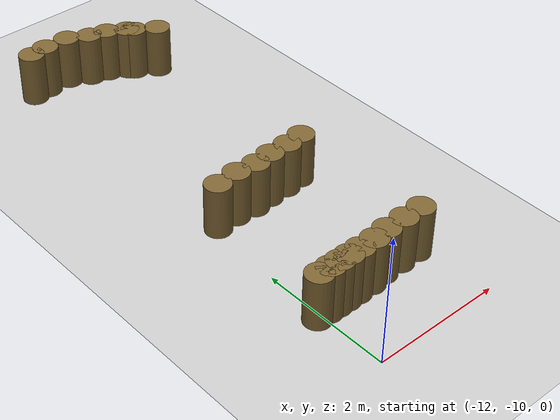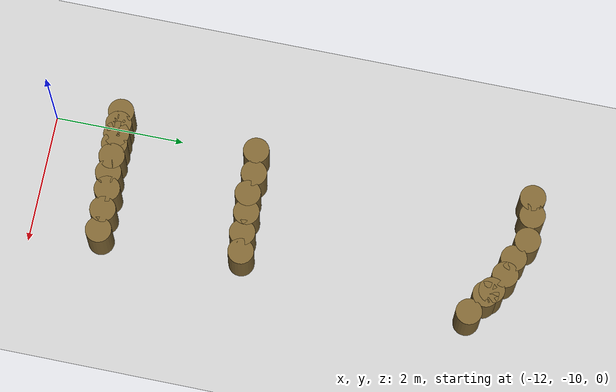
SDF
<sdf version="1.6">
 <world name="default">
  <model name="ground_plane">
   <static>1</static>
   <link name="link">
    <collision name="collision">
     <geometry><plane><normal>0 0 1</normal><size>100 100</size></plane></geometry>
     <surface><friction><ode><mu>100</mu><mu2>50</mu2></ode></friction></surface>
    </collision>
    <visual name="visual">
     <cast_shadows>0</cast_shadows>
     <geometry><plane><normal>0 0 1</normal><size>100 100</size></plane></geometry>
     <material>
      <script><uri>file://media/materials/scripts/gazebo.material</uri><name>Gazebo/Grey</name></script>
     </material>
    </visual>
   </link>
  </model>
  <model name="mini_cylinder_0_clone_0_clone_clone_clone_clone_3_clone_6">
   <link name="link">
    <inertial>
     <mass>1</mass>
     <inertia><ixx>0.145833</ixx><ixy>0</ixy><ixz>0</ixz><iyy>0.145833</iyy><iyz>0</iyz><izz>0.125</izz></inertia>
    </inertial>
    <visual name="visual">
     <geometry><cylinder><radius>0.2</radius><length>0.8</length></cylinder></geometry>
     <material>
      <script><name>Gazebo/Grey</name><uri>file://media/materials/scripts/gazebo.material</uri></script>
      <shader type="vertex"><normal_map>__default__</normal_map></shader>
      <ambient>0.5 0.4 0.2 1</ambient>
      <diffuse>0.7 0.7 0.7 1</diffuse>
      <specular>0.01 0.01 0.01 1</specular>
      <emissive>0 0 0 1</emissive>
     </material>
    </visual>
    <collision name="collision">
     <geometry><cylinder><radius>0.2</radius><length>0.8</length></cylinder></geometry>
     <surface>
      <friction>
       <ode><mu>1</mu><mu2>1</mu2><fdir1>0 0 0</fdir1><slip1>0</slip1><slip2>0</slip2></ode>
       <torsional>
        <coefficient>1</coefficient>
        <patch_radius>0</patch_radius>
        <surface_radius>0</surface_radius>
        <use_patch_radius>1</use_patch_radius>
        <ode><slip>0</slip></ode>
       </torsional>
      </friction>
      <bounce><restitution_coefficient>0</restitution_coefficient><threshold>1e+06</threshold></bounce>
      <contact>
       <collide_without_contact>0</collide_without_contact>
       <collide_without_contact_bitmask>1</collide_without_contact_bitmask>
       <collide_bitmask>1</collide_bitmask>
       <ode>
        <soft_cfm>0</soft_cfm>
        <soft_erp>0.2</soft_erp>
        <kp>1e+13</kp>
        <kd>1</kd>
        <max_vel>0.01</max_vel>
        <min_depth>0</min_depth>
       </ode>
       <bullet>
        <split_impulse>1</split_impulse>
        <split_impulse_penetration_threshold>-0.01</split_impulse_penetration_threshold>
        <soft_cfm>0</soft_cfm>
        <soft_erp>0.2</soft_erp>
        <kp>1e+13</kp>
        <kd>1</kd>
       </bullet>
      </contact>
     </surface>
    </collision>
   </link>
   <static>1</static>
   <pose>-11.9927 -2.54938 0.4 0 -0 0</pose>
  </model>
  <model name="mini_cylinder_0_clone_0_clone_clone_clone_clone_3_clone_7">
   <link name="link">
    <inertial>
     <mass>1</mass>
     <inertia><ixx>0.145833</ixx><ixy>0</ixy><ixz>0</ixz><iyy>0.145833</iyy><iyz>0</iyz><izz>0.125</izz></inertia>
    </inertial>
    <visual name="visual">
     <geometry><cylinder><radius>0.2</radius><length>0.8</length></cylinder></geometry>
     <material>
      <script><name>Gazebo/Grey</name><uri>file://media/materials/scripts/gazebo.material</uri></script>
      <shader type="vertex"><normal_map>__default__</normal_map></shader>
      <ambient>0.5 0.4 0.2 1</ambient>
      <diffuse>0.7 0.7 0.7 1</diffuse>
      <specular>0.01 0.01 0.01 1</specular>
      <emissive>0 0 0 1</emissive>
     </material>
    </visual>
    <collision name="collision">
     <geometry><cylinder><radius>0.2</radius><length>0.8</length></cylinder></geometry>
     <surface>
      <friction>
       <ode><mu>1</mu><mu2>1</mu2><fdir1>0 0 0</fdir1><slip1>0</slip1><slip2>0</slip2></ode>
       <torsional>
        <coefficient>1</coefficient>
        <patch_radius>0</patch_radius>
        <surface_radius>0</surface_radius>
        <use_patch_radius>1</use_patch_radius>
        <ode><slip>0</slip></ode>
       </torsional>
      </friction>
      <bounce><restitution_coefficient>0</restitution_coefficient><threshold>1e+06</threshold></bounce>
      <contact>
       <collide_without_contact>0</collide_without_contact>
       <collide_without_contact_bitmask>1</collide_without_contact_bitmask>
       <collide_bitmask>1</collide_bitmask>
       <ode>
        <soft_cfm>0</soft_cfm>
        <soft_erp>0.2</soft_erp>
        <kp>1e+13</kp>
        <kd>1</kd>
        <max_vel>0.01</max_vel>
        <min_depth>0</min_depth>
       </ode>
       <bullet>
        <split_impulse>1</split_impulse>
        <split_impulse_penetration_threshold>-0.01</split_impulse_penetration_threshold>
        <soft_cfm>0</soft_cfm>
        <soft_erp>0.2</soft_erp>
        <kp>1e+13</kp>
        <kd>1</kd>
       </bullet>
      </contact>
     </surface>
    </collision>
   </link>
   <static>1</static>
   <pose>-11.7175 -2.50936 0.4 0 -0 0</pose>
  </model>
  <model name="mini_cylinder_0_clone_0_clone_clone_clone_clone_3_clone_8">
   <link name="link">
    <inertial>
     <mass>1</mass>
     <inertia><ixx>0.145833</ixx><ixy>0</ixy><ixz>0</ixz><iyy>0.145833</iyy><iyz>0</iyz><izz>0.125</izz></inertia>
    </inertial>
    <visual name="visual">
     <geometry><cylinder><radius>0.2</radius><length>0.8</length></cylinder></geometry>
     <material>
      <script><name>Gazebo/Grey</name><uri>file://media/materials/scripts/gazebo.material</uri></script>
      <shader type="vertex"><normal_map>__default__</normal_map></shader>
      <ambient>0.5 0.4 0.2 1</ambient>
      <diffuse>0.7 0.7 0.7 1</diffuse>
      <specular>0.01 0.01 0.01 1</specular>
      <emissive>0 0 0 1</emissive>
     </material>
    </visual>
    <collision name="collision">
     <geometry><cylinder><radius>0.2</radius><length>0.8</length></cylinder></geometry>
     <surface>
      <friction>
       <ode><mu>1</mu><mu2>1</mu2><fdir1>0 0 0</fdir1><slip1>0</slip1><slip2>0</slip2></ode>
       <torsional>
        <coefficient>1</coefficient>
        <patch_radius>0</patch_radius>
        <surface_radius>0</surface_radius>
        <use_patch_radius>1</use_patch_radius>
        <ode><slip>0</slip></ode>
       </torsional>
      </friction>
      <bounce><restitution_coefficient>0</restitution_coefficient><threshold>1e+06</threshold></bounce>
      <contact>
       <collide_without_contact>0</collide_without_contact>
       <collide_without_contact_bitmask>1</collide_without_contact_bitmask>
       <collide_bitmask>1</collide_bitmask>
       <ode>
        <soft_cfm>0</soft_cfm>
        <soft_erp>0.2</soft_erp>
        <kp>1e+13</kp>
        <kd>1</kd>
        <max_vel>0.01</max_vel>
        <min_depth>0</min_depth>
       </ode>
       <bullet>
        <split_impulse>1</split_impulse>
        <split_impulse_penetration_threshold>-0.01</split_impulse_penetration_threshold>
        <soft_cfm>0</soft_cfm>
        <soft_erp>0.2</soft_erp>
        <kp>1e+13</kp>
        <kd>1</kd>
       </bullet>
      </contact>
     </surface>
    </collision>
   </link>
   <static>1</static>
   <pose>-11.3252 -2.50936 0.4 0 -0 0</pose>
  </model>
  <model name="mini_cylinder_0_clone_0_clone_clone_clone_clone_3_clone_9">
   <link name="link">
    <inertial>
     <mass>1</mass>
     <inertia><ixx>0.145833</ixx><ixy>0</ixy><ixz>0</ixz><iyy>0.145833</iyy><iyz>0</iyz><izz>0.125</izz></inertia>
    </inertial>
    <visual name="visual">
     <geometry><cylinder><radius>0.2</radius><length>0.8</length></cylinder></geometry>
     <material>
      <script><name>Gazebo/Grey</name><uri>file://media/materials/scripts/gazebo.material</uri></script>
      <shader type="vertex"><normal_map>__default__</normal_map></shader>
      <ambient>0.5 0.4 0.2 1</ambient>
      <diffuse>0.7 0.7 0.7 1</diffuse>
      <specular>0.01 0.01 0.01 1</specular>
      <emissive>0 0 0 1</emissive>
     </material>
    </visual>
    <collision name="collision">
     <geometry><cylinder><radius>0.2</radius><length>0.8</length></cylinder></geometry>
     <surface>
      <friction>
       <ode><mu>1</mu><mu2>1</mu2><fdir1>0 0 0</fdir1><slip1>0</slip1><slip2>0</slip2></ode>
       <torsional>
        <coefficient>1</coefficient>
        <patch_radius>0</patch_radius>
        <surface_radius>0</surface_radius>
        <use_patch_radius>1</use_patch_radius>
        <ode><slip>0</slip></ode>
       </torsional>
      </friction>
      <bounce><restitution_coefficient>0</restitution_coefficient><threshold>1e+06</threshold></bounce>
      <contact>
       <collide_without_contact>0</collide_without_contact>
       <collide_without_contact_bitmask>1</collide_without_contact_bitmask>
       <collide_bitmask>1</collide_bitmask>
       <ode>
        <soft_cfm>0</soft_cfm>
        <soft_erp>0.2</soft_erp>
        <kp>1e+13</kp>
        <kd>1</kd>
        <max_vel>0.01</max_vel>
        <min_depth>0</min_depth>
       </ode>
       <bullet>
        <split_impulse>1</split_impulse>
        <split_impulse_penetration_threshold>-0.01</split_impulse_penetration_threshold>
        <soft_cfm>0</soft_cfm>
        <soft_erp>0.2</soft_erp>
        <kp>1e+13</kp>
        <kd>1</kd>
       </bullet>
      </contact>
     </surface>
    </collision>
   </link>
   <static>1</static>
   <pose>-11.0108 -2.66693 0.4 0 -0 0</pose>
  </model>
  <model name="mini_cylinder_0_clone_0_clone_clone_clone_clone_3_clone_10">
   <link name="link">
    <inertial>
     <mass>1</mass>
     <inertia><ixx>0.145833</ixx><ixy>0</ixy><ixz>0</ixz><iyy>0.145833</iyy><iyz>0</iyz><izz>0.125</izz></inertia>
    </inertial>
    <visual name="visual">
     <geometry><cylinder><radius>0.2</radius><length>0.8</length></cylinder></geometry>
     <material>
      <script><name>Gazebo/Grey</name><uri>file://media/materials/scripts/gazebo.material</uri></script>
      <shader type="vertex"><normal_map>__default__</normal_map></shader>
      <ambient>0.5 0.4 0.2 1</ambient>
      <diffuse>0.7 0.7 0.7 1</diffuse>
      <specular>0.01 0.01 0.01 1</specular>
      <emissive>0 0 0 1</emissive>
     </material>
    </visual>
    <collision name="collision">
     <geometry><cylinder><radius>0.2</radius><length>0.8</length></cylinder></geometry>
     <surface>
      <friction>
       <ode><mu>1</mu><mu2>1</mu2><fdir1>0 0 0</fdir1><slip1>0</slip1><slip2>0</slip2></ode>
       <torsional>
        <coefficient>1</coefficient>
        <patch_radius>0</patch_radius>
        <surface_radius>0</surface_radius>
        <use_patch_radius>1</use_patch_radius>
        <ode><slip>0</slip></ode>
       </torsional>
      </friction>
      <bounce><restitution_coefficient>0</restitution_coefficient><threshold>1e+06</threshold></bounce>
      <contact>
       <collide_without_contact>0</collide_without_contact>
       <collide_without_contact_bitmask>1</collide_without_contact_bitmask>
       <collide_bitmask>1</collide_bitmask>
       <ode>
        <soft_cfm>0</soft_cfm>
        <soft_erp>0.2</soft_erp>
        <kp>1e+13</kp>
        <kd>1</kd>
        <max_vel>0.01</max_vel>
        <min_depth>0</min_depth>
       </ode>
       <bullet>
        <split_impulse>1</split_impulse>
        <split_impulse_penetration_threshold>-0.01</split_impulse_penetration_threshold>
        <soft_cfm>0</soft_cfm>
        <soft_erp>0.2</soft_erp>
        <kp>1e+13</kp>
        <kd>1</kd>
       </bullet>
      </contact>
     </surface>
    </collision>
   </link>
   <static>1</static>
   <pose>-10.7357 -2.74518 0.4 0 -0 0</pose>
  </model>
  <model name="mini_cylinder_0_clone_0_clone_clone_clone_clone_3_clone_11">
   <link name="link">
    <inertial>
     <mass>1</mass>
     <inertia><ixx>0.145833</ixx><ixy>0</ixy><ixz>0</ixz><iyy>0.145833</iyy><iyz>0</iyz><izz>0.125</izz></inertia>
    </inertial>
    <visual name="visual">
     <geometry><cylinder><radius>0.2</radius><length>0.8</length></cylinder></geometry>
     <material>
      <script><name>Gazebo/Grey</name><uri>file://media/materials/scripts/gazebo.material</uri></script>
      <shader type="vertex"><normal_map>__default__</normal_map></shader>
      <ambient>0.5 0.4 0.2 1</ambient>
      <diffuse>0.7 0.7 0.7 1</diffuse>
      <specular>0.01 0.01 0.01 1</specular>
      <emissive>0 0 0 1</emissive>
     </material>
    </visual>
    <collision name="collision">
     <geometry><cylinder><radius>0.2</radius><length>0.8</length></cylinder></geometry>
     <surface>
      <friction>
       <ode><mu>1</mu><mu2>1</mu2><fdir1>0 0 0</fdir1><slip1>0</slip1><slip2>0</slip2></ode>
       <torsional>
        <coefficient>1</coefficient>
        <patch_radius>0</patch_radius>
        <surface_radius>0</surface_radius>
        <use_patch_radius>1</use_patch_radius>
        <ode><slip>0</slip></ode>
       </torsional>
      </friction>
      <bounce><restitution_coefficient>0</restitution_coefficient><threshold>1e+06</threshold></bounce>
      <contact>
       <collide_without_contact>0</collide_without_contact>
       <collide_without_contact_bitmask>1</collide_without_contact_bitmask>
       <collide_bitmask>1</collide_bitmask>
       <ode>
        <soft_cfm>0</soft_cfm>
        <soft_erp>0.2</soft_erp>
        <kp>1e+13</kp>
        <kd>1</kd>
        <max_vel>0.01</max_vel>
        <min_depth>0</min_depth>
       </ode>
       <bullet>
        <split_impulse>1</split_impulse>
        <split_impulse_penetration_threshold>-0.01</split_impulse_penetration_threshold>
        <soft_cfm>0</soft_cfm>
        <soft_erp>0.2</soft_erp>
        <kp>1e+13</kp>
        <kd>1</kd>
       </bullet>
      </contact>
     </surface>
    </collision>
   </link>
   <static>1</static>
   <pose>-10.3827 -2.98135 0.4 0 -0 0</pose>
  </model>
  <model name="mini_cylinder_0_clone_0_clone_clone_clone_clone_3_clone_12">
   <link name="link">
    <inertial>
     <mass>1</mass>
     <inertia><ixx>0.145833</ixx><ixy>0</ixy><ixz>0</ixz><iyy>0.145833</iyy><iyz>0</iyz><izz>0.125</izz></inertia>
    </inertial>
    <visual name="visual">
     <geometry><cylinder><radius>0.2</radius><length>0.8</length></cylinder></geometry>
     <material>
      <script><name>Gazebo/Grey</name><uri>file://media/materials/scripts/gazebo.material</uri></script>
      <shader type="vertex"><normal_map>__default__</normal_map></shader>
      <ambient>0.5 0.4 0.2 1</ambient>
      <diffuse>0.7 0.7 0.7 1</diffuse>
      <specular>0.01 0.01 0.01 1</specular>
      <emissive>0 0 0 1</emissive>
     </material>
    </visual>
    <collision name="collision">
     <geometry><cylinder><radius>0.2</radius><length>0.8</length></cylinder></geometry>
     <surface>
      <friction>
       <ode><mu>1</mu><mu2>1</mu2><fdir1>0 0 0</fdir1><slip1>0</slip1><slip2>0</slip2></ode>
       <torsional>
        <coefficient>1</coefficient>
        <patch_radius>0</patch_radius>
        <surface_radius>0</surface_radius>
        <use_patch_radius>1</use_patch_radius>
        <ode><slip>0</slip></ode>
       </torsional>
      </friction>
      <bounce><restitution_coefficient>0</restitution_coefficient><threshold>1e+06</threshold></bounce>
      <contact>
       <collide_without_contact>0</collide_without_contact>
       <collide_without_contact_bitmask>1</collide_without_contact_bitmask>
       <collide_bitmask>1</collide_bitmask>
       <ode>
        <soft_cfm>0</soft_cfm>
        <soft_erp>0.2</soft_erp>
        <kp>1e+13</kp>
        <kd>1</kd>
        <max_vel>0.01</max_vel>
        <min_depth>0</min_depth>
       </ode>
       <bullet>
        <split_impulse>1</split_impulse>
        <split_impulse_penetration_threshold>-0.01</split_impulse_penetration_threshold>
        <soft_cfm>0</soft_cfm>
        <soft_erp>0.2</soft_erp>
        <kp>1e+13</kp>
        <kd>1</kd>
       </bullet>
      </contact>
     </surface>
    </collision>
   </link>
   <static>1</static>
   <pose>-10.4606 -2.90239 0.4 0 -0 0</pose>
  </model>
  <model name="mini_cylinder_0_clone_0_clone_clone_clone_clone_3_clone_13">
   <link name="link">
    <inertial>
     <mass>1</mass>
     <inertia><ixx>0.145833</ixx><ixy>0</ixy><ixz>0</ixz><iyy>0.145833</iyy><iyz>0</iyz><izz>0.125</izz></inertia>
    </inertial>
    <visual name="visual">
     <geometry><cylinder><radius>0.2</radius><length>0.8</length></cylinder></geometry>
     <material>
      <script><name>Gazebo/Grey</name><uri>file://media/materials/scripts/gazebo.material</uri></script>
      <shader type="vertex"><normal_map>__default__</normal_map></shader>
      <ambient>0.5 0.4 0.2 1</ambient>
      <diffuse>0.7 0.7 0.7 1</diffuse>
      <specular>0.01 0.01 0.01 1</specular>
      <emissive>0 0 0 1</emissive>
     </material>
    </visual>
    <collision name="collision">
     <geometry><cylinder><radius>0.2</radius><length>0.8</length></cylinder></geometry>
     <surface>
      <friction>
       <ode><mu>1</mu><mu2>1</mu2><fdir1>0 0 0</fdir1><slip1>0</slip1><slip2>0</slip2></ode>
       <torsional>
        <coefficient>1</coefficient>
        <patch_radius>0</patch_radius>
        <surface_radius>0</surface_radius>
        <use_patch_radius>1</use_patch_radius>
        <ode><slip>0</slip></ode>
       </torsional>
      </friction>
      <bounce><restitution_coefficient>0</restitution_coefficient><threshold>1e+06</threshold></bounce>
      <contact>
       <collide_without_contact>0</collide_without_contact>
       <collide_without_contact_bitmask>1</collide_without_contact_bitmask>
       <collide_bitmask>1</collide_bitmask>
       <ode>
        <soft_cfm>0</soft_cfm>
        <soft_erp>0.2</soft_erp>
        <kp>1e+13</kp>
        <kd>1</kd>
        <max_vel>0.01</max_vel>
        <min_depth>0</min_depth>
       </ode>
       <bullet>
        <split_impulse>1</split_impulse>
        <split_impulse_penetration_threshold>-0.01</split_impulse_penetration_threshold>
        <soft_cfm>0</soft_cfm>
        <soft_erp>0.2</soft_erp>
        <kp>1e+13</kp>
        <kd>1</kd>
       </bullet>
      </contact>
     </surface>
    </collision>
   </link>
   <static>1</static>
   <pose>-10.069 -3.1775 0.4 0 -0 0</pose>
  </model>
  <model name="mini_cylinder_0_clone_0_clone_clone_clone_clone_3_clone_20_clone_114">
   <link name="link">
    <inertial>
     <mass>1</mass>
     <inertia><ixx>0.145833</ixx><ixy>0</ixy><ixz>0</ixz><iyy>0.145833</iyy><iyz>0</iyz><izz>0.125</izz></inertia>
    </inertial>
    <visual name="visual">
     <geometry><cylinder><radius>0.2</radius><length>0.8</length></cylinder></geometry>
     <material>
      <script><name>Gazebo/Grey</name><uri>file://media/materials/scripts/gazebo.material</uri></script>
      <shader type="vertex"><normal_map>__default__</normal_map></shader>
      <ambient>0.5 0.4 0.2 1</ambient>
      <diffuse>0.7 0.7 0.7 1</diffuse>
      <specular>0.01 0.01 0.01 1</specular>
      <emissive>0 0 0 1</emissive>
     </material>
    </visual>
    <collision name="collision">
     <geometry><cylinder><radius>0.2</radius><length>0.8</length></cylinder></geometry>
     <surface>
      <friction>
       <ode><mu>1</mu><mu2>1</mu2><fdir1>0 0 0</fdir1><slip1>0</slip1><slip2>0</slip2></ode>
       <torsional>
        <coefficient>1</coefficient>
        <patch_radius>0</patch_radius>
        <surface_radius>0</surface_radius>
        <use_patch_radius>1</use_patch_radius>
        <ode><slip>0</slip></ode>
       </torsional>
      </friction>
      <bounce><restitution_coefficient>0</restitution_coefficient><threshold>1e+06</threshold></bounce>
      <contact>
       <collide_without_contact>0</collide_without_contact>
       <collide_without_contact_bitmask>1</collide_without_contact_bitmask>
       <collide_bitmask>1</collide_bitmask>
       <ode>
        <soft_cfm>0</soft_cfm>
        <soft_erp>0.2</soft_erp>
        <kp>1e+13</kp>
        <kd>1</kd>
        <max_vel>0.01</max_vel>
        <min_depth>0</min_depth>
       </ode>
       <bullet>
        <split_impulse>1</split_impulse>
        <split_impulse_penetration_threshold>-0.01</split_impulse_penetration_threshold>
        <soft_cfm>0</soft_cfm>
        <soft_erp>0.2</soft_erp>
        <kp>1e+13</kp>
        <kd>1</kd>
       </bullet>
      </contact>
     </surface>
    </collision>
   </link>
   <static>1</static>
   <pose>-11.8871 -6.80463 0.4 0 -0 0</pose>
  </model>
  <model name="mini_cylinder_0_clone_0_clone_clone_clone_clone_3_clone_20_clone_115">
   <link name="link">
    <inertial>
     <mass>1</mass>
     <inertia><ixx>0.145833</ixx><ixy>0</ixy><ixz>0</ixz><iyy>0.145833</iyy><iyz>0</iyz><izz>0.125</izz></inertia>
    </inertial>
    <visual name="visual">
     <geometry><cylinder><radius>0.2</radius><length>0.8</length></cylinder></geometry>
     <material>
      <script><name>Gazebo/Grey</name><uri>file://media/materials/scripts/gazebo.material</uri></script>
      <shader type="vertex"><normal_map>__default__</normal_map></shader>
      <ambient>0.5 0.4 0.2 1</ambient>
      <diffuse>0.7 0.7 0.7 1</diffuse>
      <specular>0.01 0.01 0.01 1</specular>
      <emissive>0 0 0 1</emissive>
     </material>
    </visual>
    <collision name="collision">
     <geometry><cylinder><radius>0.2</radius><length>0.8</length></cylinder></geometry>
     <surface>
      <friction>
       <ode><mu>1</mu><mu2>1</mu2><fdir1>0 0 0</fdir1><slip1>0</slip1><slip2>0</slip2></ode>
       <torsional>
        <coefficient>1</coefficient>
        <patch_radius>0</patch_radius>
        <surface_radius>0</surface_radius>
        <use_patch_radius>1</use_patch_radius>
        <ode><slip>0</slip></ode>
       </torsional>
      </friction>
      <bounce><restitution_coefficient>0</restitution_coefficient><threshold>1e+06</threshold></bounce>
      <contact>
       <collide_without_contact>0</collide_without_contact>
       <collide_without_contact_bitmask>1</collide_without_contact_bitmask>
       <collide_bitmask>1</collide_bitmask>
       <ode>
        <soft_cfm>0</soft_cfm>
        <soft_erp>0.2</soft_erp>
        <kp>1e+13</kp>
        <kd>1</kd>
        <max_vel>0.01</max_vel>
        <min_depth>0</min_depth>
       </ode>
       <bullet>
        <split_impulse>1</split_impulse>
        <split_impulse_penetration_threshold>-0.01</split_impulse_penetration_threshold>
        <soft_cfm>0</soft_cfm>
        <soft_erp>0.2</soft_erp>
        <kp>1e+13</kp>
        <kd>1</kd>
       </bullet>
      </contact>
     </surface>
    </collision>
   </link>
   <static>1</static>
   <pose>-11.5302 -6.76703 0.4 0 -0 0</pose>
  </model>
  <model name="mini_cylinder_0_clone_0_clone_clone_clone_clone_3_clone_20_clone_116">
   <link name="link">
    <inertial>
     <mass>1</mass>
     <inertia><ixx>0.145833</ixx><ixy>0</ixy><ixz>0</ixz><iyy>0.145833</iyy><iyz>0</iyz><izz>0.125</izz></inertia>
    </inertial>
    <visual name="visual">
     <geometry><cylinder><radius>0.2</radius><length>0.8</length></cylinder></geometry>
     <material>
      <script><name>Gazebo/Grey</name><uri>file://media/materials/scripts/gazebo.material</uri></script>
      <shader type="vertex"><normal_map>__default__</normal_map></shader>
      <ambient>0.5 0.4 0.2 1</ambient>
      <diffuse>0.7 0.7 0.7 1</diffuse>
      <specular>0.01 0.01 0.01 1</specular>
      <emissive>0 0 0 1</emissive>
     </material>
    </visual>
    <collision name="collision">
     <geometry><cylinder><radius>0.2</radius><length>0.8</length></cylinder></geometry>
     <surface>
      <friction>
       <ode><mu>1</mu><mu2>1</mu2><fdir1>0 0 0</fdir1><slip1>0</slip1><slip2>0</slip2></ode>
       <torsional>
        <coefficient>1</coefficient>
        <patch_radius>0</patch_radius>
        <surface_radius>0</surface_radius>
        <use_patch_radius>1</use_patch_radius>
        <ode><slip>0</slip></ode>
       </torsional>
      </friction>
      <bounce><restitution_coefficient>0</restitution_coefficient><threshold>1e+06</threshold></bounce>
      <contact>
       <collide_without_contact>0</collide_without_contact>
       <collide_without_contact_bitmask>1</collide_without_contact_bitmask>
       <collide_bitmask>1</collide_bitmask>
       <ode>
        <soft_cfm>0</soft_cfm>
        <soft_erp>0.2</soft_erp>
        <kp>1e+13</kp>
        <kd>1</kd>
        <max_vel>0.01</max_vel>
        <min_depth>0</min_depth>
       </ode>
       <bullet>
        <split_impulse>1</split_impulse>
        <split_impulse_penetration_threshold>-0.01</split_impulse_penetration_threshold>
        <soft_cfm>0</soft_cfm>
        <soft_erp>0.2</soft_erp>
        <kp>1e+13</kp>
        <kd>1</kd>
       </bullet>
      </contact>
     </surface>
    </collision>
   </link>
   <static>1</static>
   <pose>-11.2052 -6.79419 0.4 0 -0 0</pose>
  </model>
  <model name="mini_cylinder_0_clone_0_clone_clone_clone_clone_3_clone_20_clone_117">
   <link name="link">
    <inertial>
     <mass>1</mass>
     <inertia><ixx>0.145833</ixx><ixy>0</ixy><ixz>0</ixz><iyy>0.145833</iyy><iyz>0</iyz><izz>0.125</izz></inertia>
    </inertial>
    <visual name="visual">
     <geometry><cylinder><radius>0.2</radius><length>0.8</length></cylinder></geometry>
     <material>
      <script><name>Gazebo/Grey</name><uri>file://media/materials/scripts/gazebo.material</uri></script>
      <shader type="vertex"><normal_map>__default__</normal_map></shader>
      <ambient>0.5 0.4 0.2 1</ambient>
      <diffuse>0.7 0.7 0.7 1</diffuse>
      <specular>0.01 0.01 0.01 1</specular>
      <emissive>0 0 0 1</emissive>
     </material>
    </visual>
    <collision name="collision">
     <geometry><cylinder><radius>0.2</radius><length>0.8</length></cylinder></geometry>
     <surface>
      <friction>
       <ode><mu>1</mu><mu2>1</mu2><fdir1>0 0 0</fdir1><slip1>0</slip1><slip2>0</slip2></ode>
       <torsional>
        <coefficient>1</coefficient>
        <patch_radius>0</patch_radius>
        <surface_radius>0</surface_radius>
        <use_patch_radius>1</use_patch_radius>
        <ode><slip>0</slip></ode>
       </torsional>
      </friction>
      <bounce><restitution_coefficient>0</restitution_coefficient><threshold>1e+06</threshold></bounce>
      <contact>
       <collide_without_contact>0</collide_without_contact>
       <collide_without_contact_bitmask>1</collide_without_contact_bitmask>
       <collide_bitmask>1</collide_bitmask>
       <ode>
        <soft_cfm>0</soft_cfm>
        <soft_erp>0.2</soft_erp>
        <kp>1e+13</kp>
        <kd>1</kd>
        <max_vel>0.01</max_vel>
        <min_depth>0</min_depth>
       </ode>
       <bullet>
        <split_impulse>1</split_impulse>
        <split_impulse_penetration_threshold>-0.01</split_impulse_penetration_threshold>
        <soft_cfm>0</soft_cfm>
        <soft_erp>0.2</soft_erp>
        <kp>1e+13</kp>
        <kd>1</kd>
       </bullet>
      </contact>
     </surface>
    </collision>
   </link>
   <static>1</static>
   <pose>-10.9132 -6.75695 0.4 0 -0 0</pose>
  </model>
  <model name="mini_cylinder_0_clone_0_clone_clone_clone_clone_3_clone_20_clone_118">
   <link name="link">
    <inertial>
     <mass>1</mass>
     <inertia><ixx>0.145833</ixx><ixy>0</ixy><ixz>0</ixz><iyy>0.145833</iyy><iyz>0</iyz><izz>0.125</izz></inertia>
    </inertial>
    <visual name="visual">
     <geometry><cylinder><radius>0.2</radius><length>0.8</length></cylinder></geometry>
     <material>
      <script><name>Gazebo/Grey</name><uri>file://media/materials/scripts/gazebo.material</uri></script>
      <shader type="vertex"><normal_map>__default__</normal_map></shader>
      <ambient>0.5 0.4 0.2 1</ambient>
      <diffuse>0.7 0.7 0.7 1</diffuse>
      <specular>0.01 0.01 0.01 1</specular>
      <emissive>0 0 0 1</emissive>
     </material>
    </visual>
    <collision name="collision">
     <geometry><cylinder><radius>0.2</radius><length>0.8</length></cylinder></geometry>
     <surface>
      <friction>
       <ode><mu>1</mu><mu2>1</mu2><fdir1>0 0 0</fdir1><slip1>0</slip1><slip2>0</slip2></ode>
       <torsional>
        <coefficient>1</coefficient>
        <patch_radius>0</patch_radius>
        <surface_radius>0</surface_radius>
        <use_patch_radius>1</use_patch_radius>
        <ode><slip>0</slip></ode>
       </torsional>
      </friction>
      <bounce><restitution_coefficient>0</restitution_coefficient><threshold>1e+06</threshold></bounce>
      <contact>
       <collide_without_contact>0</collide_without_contact>
       <collide_without_contact_bitmask>1</collide_without_contact_bitmask>
       <collide_bitmask>1</collide_bitmask>
       <ode>
        <soft_cfm>0</soft_cfm>
        <soft_erp>0.2</soft_erp>
        <kp>1e+13</kp>
        <kd>1</kd>
        <max_vel>0.01</max_vel>
        <min_depth>0</min_depth>
       </ode>
       <bullet>
        <split_impulse>1</split_impulse>
        <split_impulse_penetration_threshold>-0.01</split_impulse_penetration_threshold>
        <soft_cfm>0</soft_cfm>
        <soft_erp>0.2</soft_erp>
        <kp>1e+13</kp>
        <kd>1</kd>
       </bullet>
      </contact>
     </surface>
    </collision>
   </link>
   <static>1</static>
   <pose>-10.5883 -6.75192 0.4 0 -0 0</pose>
  </model>
  <model name="mini_cylinder_0_clone_0_clone_clone_clone_clone_3_clone_20_clone_119">
   <link name="link">
    <inertial>
     <mass>1</mass>
     <inertia><ixx>0.145833</ixx><ixy>0</ixy><ixz>0</ixz><iyy>0.145833</iyy><iyz>0</iyz><izz>0.125</izz></inertia>
    </inertial>
    <visual name="visual">
     <geometry><cylinder><radius>0.2</radius><length>0.8</length></cylinder></geometry>
     <material>
      <script><name>Gazebo/Grey</name><uri>file://media/materials/scripts/gazebo.material</uri></script>
      <shader type="vertex"><normal_map>__default__</normal_map></shader>
      <ambient>0.5 0.4 0.2 1</ambient>
      <diffuse>0.7 0.7 0.7 1</diffuse>
      <specular>0.01 0.01 0.01 1</specular>
      <emissive>0 0 0 1</emissive>
     </material>
    </visual>
    <collision name="collision">
     <geometry><cylinder><radius>0.2</radius><length>0.8</length></cylinder></geometry>
     <surface>
      <friction>
       <ode><mu>1</mu><mu2>1</mu2><fdir1>0 0 0</fdir1><slip1>0</slip1><slip2>0</slip2></ode>
       <torsional>
        <coefficient>1</coefficient>
        <patch_radius>0</patch_radius>
        <surface_radius>0</surface_radius>
        <use_patch_radius>1</use_patch_radius>
        <ode><slip>0</slip></ode>
       </torsional>
      </friction>
      <bounce><restitution_coefficient>0</restitution_coefficient><threshold>1e+06</threshold></bounce>
      <contact>
       <collide_without_contact>0</collide_without_contact>
       <collide_without_contact_bitmask>1</collide_without_contact_bitmask>
       <collide_bitmask>1</collide_bitmask>
       <ode>
        <soft_cfm>0</soft_cfm>
        <soft_erp>0.2</soft_erp>
        <kp>1e+13</kp>
        <kd>1</kd>
        <max_vel>0.01</max_vel>
        <min_depth>0</min_depth>
       </ode>
       <bullet>
        <split_impulse>1</split_impulse>
        <split_impulse_penetration_threshold>-0.01</split_impulse_penetration_threshold>
        <soft_cfm>0</soft_cfm>
        <soft_erp>0.2</soft_erp>
        <kp>1e+13</kp>
        <kd>1</kd>
       </bullet>
      </contact>
     </surface>
    </collision>
   </link>
   <static>1</static>
   <pose>-10.2965 -6.71472 0.4 0 -0 0</pose>
  </model>
  <model name="mini_cylinder_0_clone_0_clone_clone_clone_clone_3_clone_20_clone_133">
   <link name="link">
    <inertial>
     <mass>1</mass>
     <inertia><ixx>0.145833</ixx><ixy>0</ixy><ixz>0</ixz><iyy>0.145833</iyy><iyz>0</iyz><izz>0.125</izz></inertia>
    </inertial>
    <visual name="visual">
     <geometry><cylinder><radius>0.2</radius><length>0.8</length></cylinder></geometry>
     <material>
      <script><name>Gazebo/Grey</name><uri>file://media/materials/scripts/gazebo.material</uri></script>
      <shader type="vertex"><normal_map>__default__</normal_map></shader>
      <ambient>0.5 0.4 0.2 1</ambient>
      <diffuse>0.7 0.7 0.7 1</diffuse>
      <specular>0.01 0.01 0.01 1</specular>
      <emissive>0 0 0 1</emissive>
     </material>
    </visual>
    <collision name="collision">
     <geometry><cylinder><radius>0.2</radius><length>0.8</length></cylinder></geometry>
     <surface>
      <friction>
       <ode><mu>1</mu><mu2>1</mu2><fdir1>0 0 0</fdir1><slip1>0</slip1><slip2>0</slip2></ode>
       <torsional>
        <coefficient>1</coefficient>
        <patch_radius>0</patch_radius>
        <surface_radius>0</surface_radius>
        <use_patch_radius>1</use_patch_radius>
        <ode><slip>0</slip></ode>
       </torsional>
      </friction>
      <bounce><restitution_coefficient>0</restitution_coefficient><threshold>1e+06</threshold></bounce>
      <contact>
       <collide_without_contact>0</collide_without_contact>
       <collide_without_contact_bitmask>1</collide_without_contact_bitmask>
       <collide_bitmask>1</collide_bitmask>
       <ode>
        <soft_cfm>0</soft_cfm>
        <soft_erp>0.2</soft_erp>
        <kp>1e+13</kp>
        <kd>1</kd>
        <max_vel>0.01</max_vel>
        <min_depth>0</min_depth>
       </ode>
       <bullet>
        <split_impulse>1</split_impulse>
        <split_impulse_penetration_threshold>-0.01</split_impulse_penetration_threshold>
        <soft_cfm>0</soft_cfm>
        <soft_erp>0.2</soft_erp>
        <kp>1e+13</kp>
        <kd>1</kd>
       </bullet>
      </contact>
     </surface>
    </collision>
   </link>
   <static>1</static>
   <pose>-10.1967 -8.88987 0.4 0 -0 0</pose>
  </model>
  <model name="mini_cylinder_0_clone_0_clone_clone_clone_clone_3_clone_20_clone_134">
   <link name="link">
    <inertial>
     <mass>1</mass>
     <inertia><ixx>0.145833</ixx><ixy>0</ixy><ixz>0</ixz><iyy>0.145833</iyy><iyz>0</iyz><izz>0.125</izz></inertia>
    </inertial>
    <visual name="visual">
     <geometry><cylinder><radius>0.2</radius><length>0.8</length></cylinder></geometry>
     <material>
      <script><name>Gazebo/Grey</name><uri>file://media/materials/scripts/gazebo.material</uri></script>
      <shader type="vertex"><normal_map>__default__</normal_map></shader>
      <ambient>0.5 0.4 0.2 1</ambient>
      <diffuse>0.7 0.7 0.7 1</diffuse>
      <specular>0.01 0.01 0.01 1</specular>
      <emissive>0 0 0 1</emissive>
     </material>
    </visual>
    <collision name="collision">
     <geometry><cylinder><radius>0.2</radius><length>0.8</length></cylinder></geometry>
     <surface>
      <friction>
       <ode><mu>1</mu><mu2>1</mu2><fdir1>0 0 0</fdir1><slip1>0</slip1><slip2>0</slip2></ode>
       <torsional>
        <coefficient>1</coefficient>
        <patch_radius>0</patch_radius>
        <surface_radius>0</surface_radius>
        <use_patch_radius>1</use_patch_radius>
        <ode><slip>0</slip></ode>
       </torsional>
      </friction>
      <bounce><restitution_coefficient>0</restitution_coefficient><threshold>1e+06</threshold></bounce>
      <contact>
       <collide_without_contact>0</collide_without_contact>
       <collide_without_contact_bitmask>1</collide_without_contact_bitmask>
       <collide_bitmask>1</collide_bitmask>
       <ode>
        <soft_cfm>0</soft_cfm>
        <soft_erp>0.2</soft_erp>
        <kp>1e+13</kp>
        <kd>1</kd>
        <max_vel>0.01</max_vel>
        <min_depth>0</min_depth>
       </ode>
       <bullet>
        <split_impulse>1</split_impulse>
        <split_impulse_penetration_threshold>-0.01</split_impulse_penetration_threshold>
        <soft_cfm>0</soft_cfm>
        <soft_erp>0.2</soft_erp>
        <kp>1e+13</kp>
        <kd>1</kd>
       </bullet>
      </contact>
     </surface>
    </collision>
   </link>
   <static>1</static>
   <pose>-10.5221 -8.89489 0.4 0 -0 0</pose>
  </model>
  <model name="mini_cylinder_0_clone_0_clone_clone_clone_clone_3_clone_20_clone_135">
   <link name="link">
    <inertial>
     <mass>1</mass>
     <inertia><ixx>0.145833</ixx><ixy>0</ixy><ixz>0</ixz><iyy>0.145833</iyy><iyz>0</iyz><izz>0.125</izz></inertia>
    </inertial>
    <visual name="visual">
     <geometry><cylinder><radius>0.2</radius><length>0.8</length></cylinder></geometry>
     <material>
      <script><name>Gazebo/Grey</name><uri>file://media/materials/scripts/gazebo.material</uri></script>
      <shader type="vertex"><normal_map>__default__</normal_map></shader>
      <ambient>0.5 0.4 0.2 1</ambient>
      <diffuse>0.7 0.7 0.7 1</diffuse>
      <specular>0.01 0.01 0.01 1</specular>
      <emissive>0 0 0 1</emissive>
     </material>
    </visual>
    <collision name="collision">
     <geometry><cylinder><radius>0.2</radius><length>0.8</length></cylinder></geometry>
     <surface>
      <friction>
       <ode><mu>1</mu><mu2>1</mu2><fdir1>0 0 0</fdir1><slip1>0</slip1><slip2>0</slip2></ode>
       <torsional>
        <coefficient>1</coefficient>
        <patch_radius>0</patch_radius>
        <surface_radius>0</surface_radius>
        <use_patch_radius>1</use_patch_radius>
        <ode><slip>0</slip></ode>
       </torsional>
      </friction>
      <bounce><restitution_coefficient>0</restitution_coefficient><threshold>1e+06</threshold></bounce>
      <contact>
       <collide_without_contact>0</collide_without_contact>
       <collide_without_contact_bitmask>1</collide_without_contact_bitmask>
       <collide_bitmask>1</collide_bitmask>
       <ode>
        <soft_cfm>0</soft_cfm>
        <soft_erp>0.2</soft_erp>
        <kp>1e+13</kp>
        <kd>1</kd>
        <max_vel>0.01</max_vel>
        <min_depth>0</min_depth>
       </ode>
       <bullet>
        <split_impulse>1</split_impulse>
        <split_impulse_penetration_threshold>-0.01</split_impulse_penetration_threshold>
        <soft_cfm>0</soft_cfm>
        <soft_erp>0.2</soft_erp>
        <kp>1e+13</kp>
        <kd>1</kd>
       </bullet>
      </contact>
     </surface>
    </collision>
   </link>
   <static>1</static>
   <pose>-10.8464 -8.90016 0.4 0 -0 0</pose>
  </model>
  <model name="mini_cylinder_0_clone_0_clone_clone_clone_clone_3_clone_20_clone_136">
   <link name="link">
    <inertial>
     <mass>1</mass>
     <inertia><ixx>0.145833</ixx><ixy>0</ixy><ixz>0</ixz><iyy>0.145833</iyy><iyz>0</iyz><izz>0.125</izz></inertia>
    </inertial>
    <visual name="visual">
     <geometry><cylinder><radius>0.2</radius><length>0.8</length></cylinder></geometry>
     <material>
      <script><name>Gazebo/Grey</name><uri>file://media/materials/scripts/gazebo.material</uri></script>
      <shader type="vertex"><normal_map>__default__</normal_map></shader>
      <ambient>0.5 0.4 0.2 1</ambient>
      <diffuse>0.7 0.7 0.7 1</diffuse>
      <specular>0.01 0.01 0.01 1</specular>
      <emissive>0 0 0 1</emissive>
     </material>
    </visual>
    <collision name="collision">
     <geometry><cylinder><radius>0.2</radius><length>0.8</length></cylinder></geometry>
     <surface>
      <friction>
       <ode><mu>1</mu><mu2>1</mu2><fdir1>0 0 0</fdir1><slip1>0</slip1><slip2>0</slip2></ode>
       <torsional>
        <coefficient>1</coefficient>
        <patch_radius>0</patch_radius>
        <surface_radius>0</surface_radius>
        <use_patch_radius>1</use_patch_radius>
        <ode><slip>0</slip></ode>
       </torsional>
      </friction>
      <bounce><restitution_coefficient>0</restitution_coefficient><threshold>1e+06</threshold></bounce>
      <contact>
       <collide_without_contact>0</collide_without_contact>
       <collide_without_contact_bitmask>1</collide_without_contact_bitmask>
       <collide_bitmask>1</collide_bitmask>
       <ode>
        <soft_cfm>0</soft_cfm>
        <soft_erp>0.2</soft_erp>
        <kp>1e+13</kp>
        <kd>1</kd>
        <max_vel>0.01</max_vel>
        <min_depth>0</min_depth>
       </ode>
       <bullet>
        <split_impulse>1</split_impulse>
        <split_impulse_penetration_threshold>-0.01</split_impulse_penetration_threshold>
        <soft_cfm>0</soft_cfm>
        <soft_erp>0.2</soft_erp>
        <kp>1e+13</kp>
        <kd>1</kd>
       </bullet>
      </contact>
     </surface>
    </collision>
   </link>
   <static>1</static>
   <pose>-11.1057 -8.93675 0.4 0 -0 0</pose>
  </model>
  <model name="mini_cylinder_0_clone_0_clone_clone_clone_clone_3_clone_20_clone_137">
   <link name="link">
    <inertial>
     <mass>1</mass>
     <inertia><ixx>0.145833</ixx><ixy>0</ixy><ixz>0</ixz><iyy>0.145833</iyy><iyz>0</iyz><izz>0.125</izz></inertia>
    </inertial>
    <visual name="visual">
     <geometry><cylinder><radius>0.2</radius><length>0.8</length></cylinder></geometry>
     <material>
      <script><name>Gazebo/Grey</name><uri>file://media/materials/scripts/gazebo.material</uri></script>
      <shader type="vertex"><normal_map>__default__</normal_map></shader>
      <ambient>0.5 0.4 0.2 1</ambient>
      <diffuse>0.7 0.7 0.7 1</diffuse>
      <specular>0.01 0.01 0.01 1</specular>
      <emissive>0 0 0 1</emissive>
     </material>
    </visual>
    <collision name="collision">
     <geometry><cylinder><radius>0.2</radius><length>0.8</length></cylinder></geometry>
     <surface>
      <friction>
       <ode><mu>1</mu><mu2>1</mu2><fdir1>0 0 0</fdir1><slip1>0</slip1><slip2>0</slip2></ode>
       <torsional>
        <coefficient>1</coefficient>
        <patch_radius>0</patch_radius>
        <surface_radius>0</surface_radius>
        <use_patch_radius>1</use_patch_radius>
        <ode><slip>0</slip></ode>
       </torsional>
      </friction>
      <bounce><restitution_coefficient>0</restitution_coefficient><threshold>1e+06</threshold></bounce>
      <contact>
       <collide_without_contact>0</collide_without_contact>
       <collide_without_contact_bitmask>1</collide_without_contact_bitmask>
       <collide_bitmask>1</collide_bitmask>
       <ode>
        <soft_cfm>0</soft_cfm>
        <soft_erp>0.2</soft_erp>
        <kp>1e+13</kp>
        <kd>1</kd>
        <max_vel>0.01</max_vel>
        <min_depth>0</min_depth>
       </ode>
       <bullet>
        <split_impulse>1</split_impulse>
        <split_impulse_penetration_threshold>-0.01</split_impulse_penetration_threshold>
        <soft_cfm>0</soft_cfm>
        <soft_erp>0.2</soft_erp>
        <kp>1e+13</kp>
        <kd>1</kd>
       </bullet>
      </contact>
     </surface>
    </collision>
   </link>
   <static>1</static>
   <pose>-11.3652 -8.94089 0.4 0 -0 0</pose>
  </model>
  <model name="mini_cylinder_0_clone_0_clone_clone_clone_clone_3_clone_20_clone_138">
   <link name="link">
    <inertial>
     <mass>1</mass>
     <inertia><ixx>0.145833</ixx><ixy>0</ixy><ixz>0</ixz><iyy>0.145833</iyy><iyz>0</iyz><izz>0.125</izz></inertia>
    </inertial>
    <visual name="visual">
     <geometry><cylinder><radius>0.2</radius><length>0.8</length></cylinder></geometry>
     <material>
      <script><name>Gazebo/Grey</name><uri>file://media/materials/scripts/gazebo.material</uri></script>
      <shader type="vertex"><normal_map>__default__</normal_map></shader>
      <ambient>0.5 0.4 0.2 1</ambient>
      <diffuse>0.7 0.7 0.7 1</diffuse>
      <specular>0.01 0.01 0.01 1</specular>
      <emissive>0 0 0 1</emissive>
     </material>
    </visual>
    <collision name="collision">
     <geometry><cylinder><radius>0.2</radius><length>0.8</length></cylinder></geometry>
     <surface>
      <friction>
       <ode><mu>1</mu><mu2>1</mu2><fdir1>0 0 0</fdir1><slip1>0</slip1><slip2>0</slip2></ode>
       <torsional>
        <coefficient>1</coefficient>
        <patch_radius>0</patch_radius>
        <surface_radius>0</surface_radius>
        <use_patch_radius>1</use_patch_radius>
        <ode><slip>0</slip></ode>
       </torsional>
      </friction>
      <bounce><restitution_coefficient>0</restitution_coefficient><threshold>1e+06</threshold></bounce>
      <contact>
       <collide_without_contact>0</collide_without_contact>
       <collide_without_contact_bitmask>1</collide_without_contact_bitmask>
       <collide_bitmask>1</collide_bitmask>
       <ode>
        <soft_cfm>0</soft_cfm>
        <soft_erp>0.2</soft_erp>
        <kp>1e+13</kp>
        <kd>1</kd>
        <max_vel>0.01</max_vel>
        <min_depth>0</min_depth>
       </ode>
       <bullet>
        <split_impulse>1</split_impulse>
        <split_impulse_penetration_threshold>-0.01</split_impulse_penetration_threshold>
        <soft_cfm>0</soft_cfm>
        <soft_erp>0.2</soft_erp>
        <kp>1e+13</kp>
        <kd>1</kd>
       </bullet>
      </contact>
     </surface>
    </collision>
   </link>
   <static>1</static>
   <pose>-11.5602 -8.94384 0.4 0 -0 0</pose>
  </model>
  <model name="mini_cylinder_0_clone_0_clone_clone_clone_clone_3_clone_20_clone_139">
   <link name="link">
    <inertial>
     <mass>1</mass>
     <inertia><ixx>0.145833</ixx><ixy>0</ixy><ixz>0</ixz><iyy>0.145833</iyy><iyz>0</iyz><izz>0.125</izz></inertia>
    </inertial>
    <visual name="visual">
     <geometry><cylinder><radius>0.2</radius><length>0.8</length></cylinder></geometry>
     <material>
      <script><name>Gazebo/Grey</name><uri>file://media/materials/scripts/gazebo.material</uri></script>
      <shader type="vertex"><normal_map>__default__</normal_map></shader>
      <ambient>0.5 0.4 0.2 1</ambient>
      <diffuse>0.7 0.7 0.7 1</diffuse>
      <specular>0.01 0.01 0.01 1</specular>
      <emissive>0 0 0 1</emissive>
     </material>
    </visual>
    <collision name="collision">
     <geometry><cylinder><radius>0.2</radius><length>0.8</length></cylinder></geometry>
     <surface>
      <friction>
       <ode><mu>1</mu><mu2>1</mu2><fdir1>0 0 0</fdir1><slip1>0</slip1><slip2>0</slip2></ode>
       <torsional>
        <coefficient>1</coefficient>
        <patch_radius>0</patch_radius>
        <surface_radius>0</surface_radius>
        <use_patch_radius>1</use_patch_radius>
        <ode><slip>0</slip></ode>
       </torsional>
      </friction>
      <bounce><restitution_coefficient>0</restitution_coefficient><threshold>1e+06</threshold></bounce>
      <contact>
       <collide_without_contact>0</collide_without_contact>
       <collide_without_contact_bitmask>1</collide_without_contact_bitmask>
       <collide_bitmask>1</collide_bitmask>
       <ode>
        <soft_cfm>0</soft_cfm>
        <soft_erp>0.2</soft_erp>
        <kp>1e+13</kp>
        <kd>1</kd>
        <max_vel>0.01</max_vel>
        <min_depth>0</min_depth>
       </ode>
       <bullet>
        <split_impulse>1</split_impulse>
        <split_impulse_penetration_threshold>-0.01</split_impulse_penetration_threshold>
        <soft_cfm>0</soft_cfm>
        <soft_erp>0.2</soft_erp>
        <kp>1e+13</kp>
        <kd>1</kd>
       </bullet>
      </contact>
     </surface>
    </collision>
   </link>
   <static>1</static>
   <pose>-11.7227 -8.9465 0.4 0 -0 0</pose>
  </model>
  <model name="mini_cylinder_0_clone_0_clone_clone_clone_clone_3_clone_20_clone_140">
   <link name="link">
    <inertial>
     <mass>1</mass>
     <inertia><ixx>0.145833</ixx><ixy>0</ixy><ixz>0</ixz><iyy>0.145833</iyy><iyz>0</iyz><izz>0.125</izz></inertia>
    </inertial>
    <visual name="visual">
     <geometry><cylinder><radius>0.2</radius><length>0.8</length></cylinder></geometry>
     <material>
      <script><name>Gazebo/Grey</name><uri>file://media/materials/scripts/gazebo.material</uri></script>
      <shader type="vertex"><normal_map>__default__</normal_map></shader>
      <ambient>0.5 0.4 0.2 1</ambient>
      <diffuse>0.7 0.7 0.7 1</diffuse>
      <specular>0.01 0.01 0.01 1</specular>
      <emissive>0 0 0 1</emissive>
     </material>
    </visual>
    <collision name="collision">
     <geometry><cylinder><radius>0.2</radius><length>0.8</length></cylinder></geometry>
     <surface>
      <friction>
       <ode><mu>1</mu><mu2>1</mu2><fdir1>0 0 0</fdir1><slip1>0</slip1><slip2>0</slip2></ode>
       <torsional>
        <coefficient>1</coefficient>
        <patch_radius>0</patch_radius>
        <surface_radius>0</surface_radius>
        <use_patch_radius>1</use_patch_radius>
        <ode><slip>0</slip></ode>
       </torsional>
      </friction>
      <bounce><restitution_coefficient>0</restitution_coefficient><threshold>1e+06</threshold></bounce>
      <contact>
       <collide_without_contact>0</collide_without_contact>
       <collide_without_contact_bitmask>1</collide_without_contact_bitmask>
       <collide_bitmask>1</collide_bitmask>
       <ode>
        <soft_cfm>0</soft_cfm>
        <soft_erp>0.2</soft_erp>
        <kp>1e+13</kp>
        <kd>1</kd>
        <max_vel>0.01</max_vel>
        <min_depth>0</min_depth>
       </ode>
       <bullet>
        <split_impulse>1</split_impulse>
        <split_impulse_penetration_threshold>-0.01</split_impulse_penetration_threshold>
        <soft_cfm>0</soft_cfm>
        <soft_erp>0.2</soft_erp>
        <kp>1e+13</kp>
        <kd>1</kd>
       </bullet>
      </contact>
     </surface>
    </collision>
   </link>
   <static>1</static>
   <pose>-11.8853 -8.94828 0.4 0 -0 0</pose>
  </model>
  <model name="mini_cylinder_0_clone_0_clone_clone_clone_clone_3_clone_20_clone_141">
   <link name="link">
    <inertial>
     <mass>1</mass>
     <inertia><ixx>0.145833</ixx><ixy>0</ixy><ixz>0</ixz><iyy>0.145833</iyy><iyz>0</iyz><izz>0.125</izz></inertia>
    </inertial>
    <visual name="visual">
     <geometry><cylinder><radius>0.2</radius><length>0.8</length></cylinder></geometry>
     <material>
      <script><name>Gazebo/Grey</name><uri>file://media/materials/scripts/gazebo.material</uri></script>
      <shader type="vertex"><normal_map>__default__</normal_map></shader>
      <ambient>0.5 0.4 0.2 1</ambient>
      <diffuse>0.7 0.7 0.7 1</diffuse>
      <specular>0.01 0.01 0.01 1</specular>
      <emissive>0 0 0 1</emissive>
     </material>
    </visual>
    <collision name="collision">
     <geometry><cylinder><radius>0.2</radius><length>0.8</length></cylinder></geometry>
     <surface>
      <friction>
       <ode><mu>1</mu><mu2>1</mu2><fdir1>0 0 0</fdir1><slip1>0</slip1><slip2>0</slip2></ode>
       <torsional>
        <coefficient>1</coefficient>
        <patch_radius>0</patch_radius>
        <surface_radius>0</surface_radius>
        <use_patch_radius>1</use_patch_radius>
        <ode><slip>0</slip></ode>
       </torsional>
      </friction>
      <bounce><restitution_coefficient>0</restitution_coefficient><threshold>1e+06</threshold></bounce>
      <contact>
       <collide_without_contact>0</collide_without_contact>
       <collide_without_contact_bitmask>1</collide_without_contact_bitmask>
       <collide_bitmask>1</collide_bitmask>
       <ode>
        <soft_cfm>0</soft_cfm>
        <soft_erp>0.2</soft_erp>
        <kp>1e+13</kp>
        <kd>1</kd>
        <max_vel>0.01</max_vel>
        <min_depth>0</min_depth>
       </ode>
       <bullet>
        <split_impulse>1</split_impulse>
        <split_impulse_penetration_threshold>-0.01</split_impulse_penetration_threshold>
        <soft_cfm>0</soft_cfm>
        <soft_erp>0.2</soft_erp>
        <kp>1e+13</kp>
        <kd>1</kd>
       </bullet>
      </contact>
     </surface>
    </collision>
   </link>
   <static>1</static>
   <pose>-12.0801 -8.95148 0.4 0 -0 0</pose>
  </model>
 </world>
</sdf>
